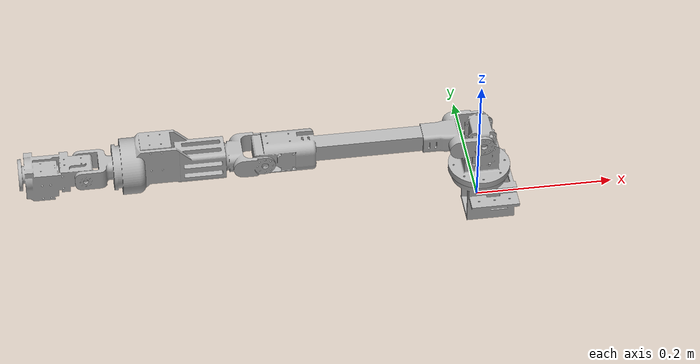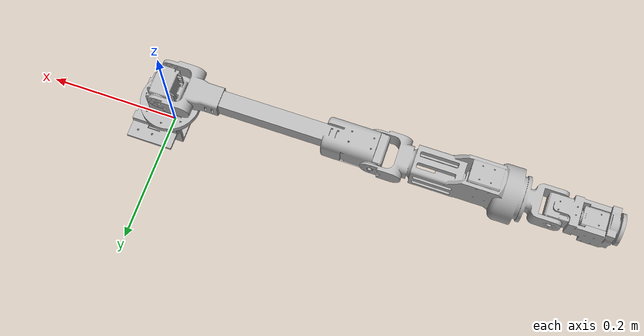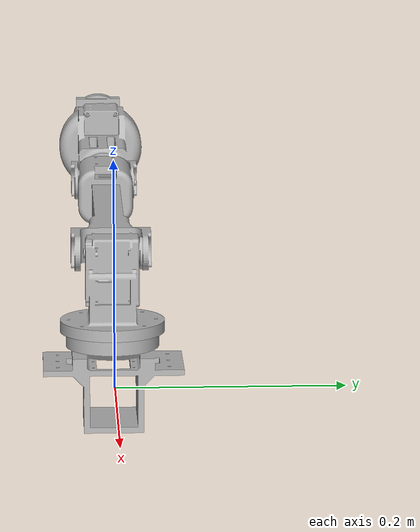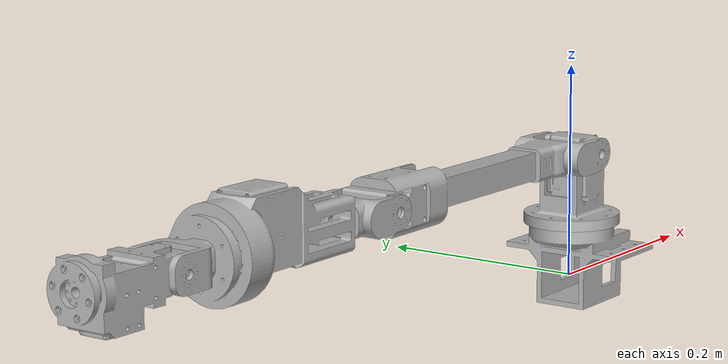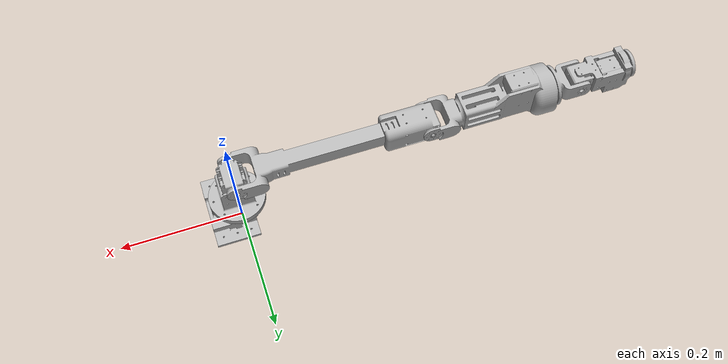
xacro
<?xml version="1.0" encoding="utf-8"?>

<robot name="" xmlns:xacro="http://ros.org/wiki/xacro" >

     <material name="silver">
    <color rgba="0.700 0.700 0.700 1.000"/>
  </material>

  <link name="world">
      </link>

  <link name="base_link">
    <inertial>
      <origin xyz="0 0 0" rpy="0 0 0"/>
      <mass value="5.0"/>
      <inertia ixx="0.1" iyy="0.1" izz="0.1" ixy="0.0" iyz="0.0" ixz="0.0"/>
    </inertial>
    <visual>
      <origin xyz="0 0 0" rpy="0 0 0"/>
      <geometry>
        <mesh filename="model://examen_description/meshes/base_link.stl" scale="0.001 0.001 0.001"/>
      </geometry>
      <material name="silver"/>
      <material/>
    </visual>
    <collision>
      <origin xyz="0 0 0" rpy="0 0 0"/>
      <geometry>
        <mesh filename="model://examen_description/meshes/base_link.stl" scale="0.001 0.001 0.001"/>
      </geometry>
    </collision>
  </link>

  <link name="Link_11">
    <inertial>
      <origin xyz="-1.9362964206263425e-06 0.00023502025240244623 0.028408678739873995" rpy="0 0 0"/>
      <mass value="0.1881057997429459"/>
      <inertia ixx="0.0002013136648267291" iyy="0.00019527411438701012" izz="0.00010614315800378446" ixy="-2.3656878209275364e-09" iyz="-2.1885649694925894e-06" ixz="9.6873738451118e-09"/>
    </inertial>
    <visual>
      <origin xyz="-0.000674 0.00181 -0.051254" rpy="0 0 0"/>
      <geometry>
        <mesh filename= "model://examen_description/meshes/Link_11.stl"  scale="0.001 0.001 0.001"/>
      </geometry>
      <material name="silver"/>
      <material/>
    </visual>
    <collision>
      <origin xyz="-0.000674 0.00181 -0.051254" rpy="0 0 0"/>
      <geometry>
        <mesh filename= "model://examen_description/meshes/Link_11.stl"  scale="0.001 0.001 0.001"/>
      </geometry>
    </collision>
  </link>

  <link name="Link_21">
    <inertial>
      <origin xyz="-0.20895744730856985 -0.026270064504570433 -5.6397706098790246e-05" rpy="0 0 0"/>
      <mass value="0.2624863981848249"/>
      <inertia ixx="0.00010197354468461468" iyy="0.003282178036223188" izz="0.0033091252582860588" ixy="5.687861080477485e-06" iyz="1.714904543647115e-10" ixz="-1.4003145936553052e-06"/>
    </inertial>
    <visual>
      <origin xyz="-0.000674 -0.024215 -0.119279" rpy="0 0 0"/>
      <geometry>
        <mesh filename="model://examen_description/meshes/Link_21.stl" scale="0.001 0.001 0.001"/>
      </geometry>
      <material name="silver"/>
      <material/>
    </visual>
    <collision>
      <origin xyz="-0.000674 -0.024215 -0.119279" rpy="0 0 0"/>
      <geometry>
        <mesh filename="model://examen_description/meshes/Link_21.stl" scale="0.001 0.001 0.001"/>
      </geometry>
    </collision>
  </link>

  <link name="Link_31">
    <inertial>
      <origin xyz="-0.1478467249434351 0.024499724527640994 0.004150145149179232" rpy="0 0 0"/>
      <mass value="0.3796337573160341"/>
      <inertia ixx="0.00023463252909112445" iyy="0.0015114267774865436" izz="0.001499332787807714" ixy="2.208562044185569e-11" iyz="3.5764531120712276e-12" ixz="3.905214442601057e-06"/>
    </inertial>
    <visual>
      <origin xyz="0.314576 0.026785 -0.119029" rpy="0 0 0"/>
      <geometry>
        <mesh filename="model://examen_description/meshes/Link_31.stl" scale="0.001 0.001 0.001"/>
      </geometry>
      <material name="silver"/>
      <material/>
    </visual>
    <collision>
      <origin xyz="0.314576 0.026785 -0.119029" rpy="0 0 0"/>
      <geometry>
        <mesh filename="model://examen_description/meshes/Link_31.stl" scale="0.001 0.001 0.001"/>
      </geometry>
    </collision>
  </link>

  <link name="Link_41">
    <inertial>
      <origin xyz="-0.044654234436106166 -0.0190920304552995 -0.0043414869190231825" rpy="0 0 0"/>
      <mass value="0.15497848066200157"/>
      <inertia ixx="4.902510800966833e-05" iyy="0.00014627365156272276" izz="0.00014226945050014456" ixy="7.042813085306676e-07" iyz="8.769989213383296e-08" ixz="-9.054534622141355e-06"/>
    </inertial>
    <visual>
      <origin xyz="0.569076 -0.016715 -0.119029" rpy="0 0 0"/>
      <geometry>
        <mesh filename="model://examen_description/meshes/Link_41.stl" scale="0.001 0.001 0.001"/>
      </geometry>
      <material name="silver"/>
      <material/>
    </visual>
    <collision>
      <origin xyz="0.569076 -0.016715 -0.119029" rpy="0 0 0"/>
      <geometry>
        <mesh filename="model://examen_description/meshes/Link_41.stl" scale="0.001 0.001 0.001"/>
      </geometry>
    </collision>
  </link>

  <link name="P">
  </link>

  <joint name="world_joint" type="fixed">
      <parent link="world"/>
      <child link="base_link"/>
      <origin xyz="0 0 0.0" rpy="0 0 0"/>
  </joint>

  <joint name="base_link_to_link_1" type="revolute">
    <origin xyz="0.000674 -0.00181 0.051254" rpy="0 0 0"/>
    <parent link="base_link"/>
    <child link="Link_11"/>
    <axis xyz="0.0 0.0 1.0"/>
    <limit upper="3.141593" lower="-3.141593" effort="100" velocity="100"/>
  </joint>

  <joint name="link_1_to_link_2" type="revolute">
    <origin xyz="0.0 0.026025 0.068025" rpy="0 0 0"/>
    <parent link="Link_11"/>
    <child link="Link_21"/>
    <axis xyz="0.0 -1.0 0.0"/>
    <limit upper="3.141593" lower="-3.141593" effort="100" velocity="100"/>
  </joint>

  <joint name="link_2_to_link_3" type="revolute">
    <origin xyz="-0.31525 -0.051 -0.00025" rpy="0 0 0"/>
    <parent link="Link_21"/>
    <child link="Link_31"/>
    <axis xyz="-0.0 -1.0 0.0"/>
    <limit upper="3.141593" lower="-3.141593" effort="100" velocity="100"/>
  </joint>

  <joint name="link_3_to_link_4" type="revolute">
    <origin xyz="-0.2545 0.0435 0.0" rpy="0 0 0"/>
    <parent link="Link_31"/>
    <child link="Link_41"/>
    <axis xyz="-0.0 -1.0 -0.0"/>
    <limit upper="3.141593" lower="-3.141593" effort="100" velocity="100"/>
  </joint>

  <joint name="link_P_joint" type="fixed">
      <origin xyz="-0.1 -0.02 0.0" rpy="0 4.71 0"/>
      <parent link="Link_41"/>
      <child link="P"/>
  </joint>

</robot>
